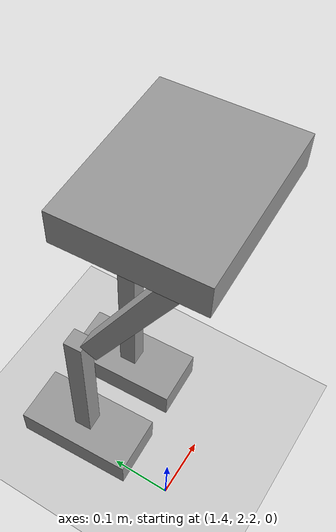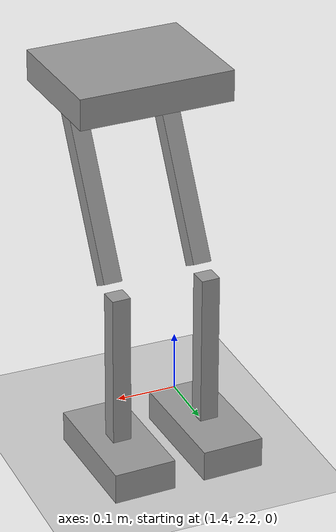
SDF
<sdf version="1.6">
 <world name="default">
  <model name="ground_plane">
   <static>1</static>
   <link name="link">
    <collision name="collision">
     <geometry><plane><normal>0 0 1</normal><size>100 100</size></plane></geometry>
     <surface><friction><ode><mu>100</mu><mu2>50</mu2></ode></friction></surface>
    </collision>
    <visual name="visual">
     <cast_shadows>0</cast_shadows>
     <geometry><plane><normal>0 0 1</normal><size>100 100</size></plane></geometry>
     <material>
      <script><uri>file://media/materials/scripts/gazebo.material</uri><name>Gazebo/Grey</name></script>
     </material>
    </visual>
   </link>
  </model>
  <model name="HumonoidRobot_2">
   <link name="link_0">
    <pose>-0.075081 0.045022 -0.236474 0 -0 0</pose>
    <inertial>
     <mass>1</mass>
     <inertia>
      <ixx>0.166667</ixx>
      <ixy>0</ixy>
      <ixz>0</ixz>
      <iyy>0.166667</iyy>
      <iyz>0</iyz>
      <izz>0.166667</izz>
     </inertia>
    </inertial>
    <visual name="visual">
     <geometry><box><size>0.1 0.2 0.05</size></box></geometry>
     <material>
      <lighting>1</lighting>
      <script><uri>file://media/materials/scripts/gazebo.material</uri><name>Gazebo/Grey</name></script>
      <shader type="pixel"><normal_map>__default__</normal_map></shader>
      <ambient>0.3 0.3 0.3 1</ambient>
      <diffuse>0.7 0.7 0.7 1</diffuse>
      <specular>0.01 0.01 0.01 1</specular>
      <emissive>0 0 0 1</emissive>
     </material>
    </visual>
    <collision name="collision">
     <geometry><box><size>0.1 0.2 0.05</size></box></geometry>
     <surface>
      <friction>
       <ode><mu>1</mu><mu2>1</mu2><fdir1>0 0 0</fdir1><slip1>0</slip1><slip2>0</slip2></ode>
       <torsional>
        <coefficient>1</coefficient>
        <patch_radius>0</patch_radius>
        <surface_radius>0</surface_radius>
        <use_patch_radius>1</use_patch_radius>
        <ode><slip>0</slip></ode>
       </torsional>
      </friction>
      <bounce><restitution_coefficient>0</restitution_coefficient><threshold>1e+06</threshold></bounce>
      <contact>
       <collide_without_contact>0</collide_without_contact>
       <collide_without_contact_bitmask>1</collide_without_contact_bitmask>
       <collide_bitmask>1</collide_bitmask>
       <ode>
        <soft_cfm>0</soft_cfm>
        <soft_erp>0.2</soft_erp>
        <kp>1e+13</kp>
        <kd>1</kd>
        <max_vel>0.01</max_vel>
        <min_depth>0</min_depth>
       </ode>
       <bullet>
        <split_impulse>1</split_impulse>
        <split_impulse_penetration_threshold>-0.01</split_impulse_penetration_threshold>
        <soft_cfm>0</soft_cfm>
        <soft_erp>0.2</soft_erp>
        <kp>1e+13</kp>
        <kd>1</kd>
       </bullet>
      </contact>
     </surface>
    </collision>
   </link>
   <link name="link_0_clone">
    <pose>0.074919 0.045022 -0.236474 0 -0 0</pose>
    <inertial>
     <mass>1</mass>
     <inertia>
      <ixx>0.166667</ixx>
      <ixy>0</ixy>
      <ixz>0</ixz>
      <iyy>0.166667</iyy>
      <iyz>0</iyz>
      <izz>0.166667</izz>
     </inertia>
    </inertial>
    <visual name="visual">
     <geometry><box><size>0.1 0.2 0.05</size></box></geometry>
     <material>
      <lighting>1</lighting>
      <script><uri>file://media/materials/scripts/gazebo.material</uri><name>Gazebo/Grey</name></script>
      <shader type="pixel"><normal_map>__default__</normal_map></shader>
      <ambient>0.3 0.3 0.3 1</ambient>
      <diffuse>0.7 0.7 0.7 1</diffuse>
      <specular>0.01 0.01 0.01 1</specular>
      <emissive>0 0 0 1</emissive>
     </material>
    </visual>
    <collision name="collision">
     <geometry><box><size>0.1 0.2 0.05</size></box></geometry>
     <surface>
      <friction>
       <ode><mu>1</mu><mu2>1</mu2><fdir1>0 0 0</fdir1><slip1>0</slip1><slip2>0</slip2></ode>
       <torsional>
        <coefficient>1</coefficient>
        <patch_radius>0</patch_radius>
        <surface_radius>0</surface_radius>
        <use_patch_radius>1</use_patch_radius>
        <ode><slip>0</slip></ode>
       </torsional>
      </friction>
      <bounce><restitution_coefficient>0</restitution_coefficient><threshold>1e+06</threshold></bounce>
      <contact>
       <collide_without_contact>0</collide_without_contact>
       <collide_without_contact_bitmask>1</collide_without_contact_bitmask>
       <collide_bitmask>1</collide_bitmask>
       <ode>
        <soft_cfm>0</soft_cfm>
        <soft_erp>0.2</soft_erp>
        <kp>1e+13</kp>
        <kd>1</kd>
        <max_vel>0.01</max_vel>
        <min_depth>0</min_depth>
       </ode>
       <bullet>
        <split_impulse>1</split_impulse>
        <split_impulse_penetration_threshold>-0.01</split_impulse_penetration_threshold>
        <soft_cfm>0</soft_cfm>
        <soft_erp>0.2</soft_erp>
        <kp>1e+13</kp>
        <kd>1</kd>
       </bullet>
      </contact>
     </surface>
    </collision>
   </link>
   <link name="link_0_clone_0">
    <pose>0.000486 -0.069978 0.341184 0 -0 0</pose>
    <inertial>
     <mass>1</mass>
     <inertia>
      <ixx>0.166667</ixx>
      <ixy>0</ixy>
      <ixz>0</ixz>
      <iyy>0.166667</iyy>
      <iyz>0</iyz>
      <izz>0.166667</izz>
     </inertia>
    </inertial>
    <visual name="visual">
     <geometry><box><size>0.25 0.2 0.05</size></box></geometry>
     <material>
      <lighting>1</lighting>
      <script><uri>file://media/materials/scripts/gazebo.material</uri><name>Gazebo/Grey</name></script>
      <shader type="pixel"><normal_map>__default__</normal_map></shader>
      <ambient>0.3 0.3 0.3 1</ambient>
      <diffuse>0.7 0.7 0.7 1</diffuse>
      <specular>0.01 0.01 0.01 1</specular>
      <emissive>0 0 0 1</emissive>
     </material>
    </visual>
    <collision name="collision">
     <geometry><box><size>0.25 0.2 0.05</size></box></geometry>
     <surface>
      <friction>
       <ode><mu>1</mu><mu2>1</mu2><fdir1>0 0 0</fdir1><slip1>0</slip1><slip2>0</slip2></ode>
       <torsional>
        <coefficient>1</coefficient>
        <patch_radius>0</patch_radius>
        <surface_radius>0</surface_radius>
        <use_patch_radius>1</use_patch_radius>
        <ode><slip>0</slip></ode>
       </torsional>
      </friction>
      <bounce><restitution_coefficient>0</restitution_coefficient><threshold>1e+06</threshold></bounce>
      <contact>
       <collide_without_contact>0</collide_without_contact>
       <collide_without_contact_bitmask>1</collide_without_contact_bitmask>
       <collide_bitmask>1</collide_bitmask>
       <ode>
        <soft_cfm>0</soft_cfm>
        <soft_erp>0.2</soft_erp>
        <kp>1e+13</kp>
        <kd>1</kd>
        <max_vel>0.01</max_vel>
        <min_depth>0</min_depth>
       </ode>
       <bullet>
        <split_impulse>1</split_impulse>
        <split_impulse_penetration_threshold>-0.01</split_impulse_penetration_threshold>
        <soft_cfm>0</soft_cfm>
        <soft_erp>0.2</soft_erp>
        <kp>1e+13</kp>
        <kd>1</kd>
       </bullet>
      </contact>
     </surface>
    </collision>
   </link>
   <link name="link_1">
    <pose>-0.075081 0.045022 -0.111474 0 -0 0</pose>
    <inertial>
     <mass>1</mass>
     <inertia>
      <ixx>0.166667</ixx>
      <ixy>0</ixy>
      <ixz>0</ixz>
      <iyy>0.166667</iyy>
      <iyz>0</iyz>
      <izz>0.166667</izz>
     </inertia>
    </inertial>
    <visual name="visual">
     <geometry><box><size>0.03 0.03 0.3</size></box></geometry>
     <material>
      <lighting>1</lighting>
      <script><uri>file://media/materials/scripts/gazebo.material</uri><name>Gazebo/Grey</name></script>
      <shader type="pixel"><normal_map>__default__</normal_map></shader>
      <ambient>0.3 0.3 0.3 1</ambient>
      <diffuse>0.7 0.7 0.7 1</diffuse>
      <specular>0.01 0.01 0.01 1</specular>
      <emissive>0 0 0 1</emissive>
     </material>
    </visual>
    <collision name="collision">
     <geometry><box><size>0.03 0.03 0.3</size></box></geometry>
     <surface>
      <friction>
       <ode><mu>1</mu><mu2>1</mu2><fdir1>0 0 0</fdir1><slip1>0</slip1><slip2>0</slip2></ode>
       <torsional>
        <coefficient>1</coefficient>
        <patch_radius>0</patch_radius>
        <surface_radius>0</surface_radius>
        <use_patch_radius>1</use_patch_radius>
        <ode><slip>0</slip></ode>
       </torsional>
      </friction>
      <bounce><restitution_coefficient>0</restitution_coefficient><threshold>1e+06</threshold></bounce>
      <contact>
       <collide_without_contact>0</collide_without_contact>
       <collide_without_contact_bitmask>1</collide_without_contact_bitmask>
       <collide_bitmask>1</collide_bitmask>
       <ode>
        <soft_cfm>0</soft_cfm>
        <soft_erp>0.2</soft_erp>
        <kp>1e+13</kp>
        <kd>1</kd>
        <max_vel>0.01</max_vel>
        <min_depth>0</min_depth>
       </ode>
       <bullet>
        <split_impulse>1</split_impulse>
        <split_impulse_penetration_threshold>-0.01</split_impulse_penetration_threshold>
        <soft_cfm>0</soft_cfm>
        <soft_erp>0.2</soft_erp>
        <kp>1e+13</kp>
        <kd>1</kd>
       </bullet>
      </contact>
     </surface>
    </collision>
   </link>
   <link name="link_1_clone">
    <pose>0.074919 0.045022 -0.111474 0 -0 0</pose>
    <inertial>
     <mass>1</mass>
     <inertia>
      <ixx>0.166667</ixx>
      <ixy>0</ixy>
      <ixz>0</ixz>
      <iyy>0.166667</iyy>
      <iyz>0</iyz>
      <izz>0.166667</izz>
     </inertia>
    </inertial>
    <visual name="visual">
     <geometry><box><size>0.03 0.03 0.3</size></box></geometry>
     <material>
      <lighting>1</lighting>
      <script><uri>file://media/materials/scripts/gazebo.material</uri><name>Gazebo/Grey</name></script>
      <shader type="pixel"><normal_map>__default__</normal_map></shader>
      <ambient>0.3 0.3 0.3 1</ambient>
      <diffuse>0.7 0.7 0.7 1</diffuse>
      <specular>0.01 0.01 0.01 1</specular>
      <emissive>0 0 0 1</emissive>
     </material>
    </visual>
    <collision name="collision">
     <geometry><box><size>0.03 0.03 0.3</size></box></geometry>
     <surface>
      <friction>
       <ode><mu>1</mu><mu2>1</mu2><fdir1>0 0 0</fdir1><slip1>0</slip1><slip2>0</slip2></ode>
       <torsional>
        <coefficient>1</coefficient>
        <patch_radius>0</patch_radius>
        <surface_radius>0</surface_radius>
        <use_patch_radius>1</use_patch_radius>
        <ode><slip>0</slip></ode>
       </torsional>
      </friction>
      <bounce><restitution_coefficient>0</restitution_coefficient><threshold>1e+06</threshold></bounce>
      <contact>
       <collide_without_contact>0</collide_without_contact>
       <collide_without_contact_bitmask>1</collide_without_contact_bitmask>
       <collide_bitmask>1</collide_bitmask>
       <ode>
        <soft_cfm>0</soft_cfm>
        <soft_erp>0.2</soft_erp>
        <kp>1e+13</kp>
        <kd>1</kd>
        <max_vel>0.01</max_vel>
        <min_depth>0</min_depth>
       </ode>
       <bullet>
        <split_impulse>1</split_impulse>
        <split_impulse_penetration_threshold>-0.01</split_impulse_penetration_threshold>
        <soft_cfm>0</soft_cfm>
        <soft_erp>0.2</soft_erp>
        <kp>1e+13</kp>
        <kd>1</kd>
       </bullet>
      </contact>
     </surface>
    </collision>
   </link>
   <link name="link_1_clone_0">
    <pose>-0.075081 -0.055055 0.177355 0.5 -0 0</pose>
    <inertial>
     <mass>1</mass>
     <inertia>
      <ixx>0.166667</ixx>
      <ixy>0</ixy>
      <ixz>0</ixz>
      <iyy>0.166667</iyy>
      <iyz>0</iyz>
      <izz>0.166667</izz>
     </inertia>
    </inertial>
    <visual name="visual">
     <geometry><box><size>0.03 0.03 0.3</size></box></geometry>
     <material>
      <lighting>1</lighting>
      <script><uri>file://media/materials/scripts/gazebo.material</uri><name>Gazebo/Grey</name></script>
      <shader type="pixel"><normal_map>__default__</normal_map></shader>
      <ambient>0.3 0.3 0.3 1</ambient>
      <diffuse>0.7 0.7 0.7 1</diffuse>
      <specular>0.01 0.01 0.01 1</specular>
      <emissive>0 0 0 1</emissive>
     </material>
    </visual>
    <collision name="collision">
     <geometry><box><size>0.03 0.03 0.3</size></box></geometry>
     <surface>
      <friction>
       <ode><mu>1</mu><mu2>1</mu2><fdir1>0 0 0</fdir1><slip1>0</slip1><slip2>0</slip2></ode>
       <torsional>
        <coefficient>1</coefficient>
        <patch_radius>0</patch_radius>
        <surface_radius>0</surface_radius>
        <use_patch_radius>1</use_patch_radius>
        <ode><slip>0</slip></ode>
       </torsional>
      </friction>
      <bounce><restitution_coefficient>0</restitution_coefficient><threshold>1e+06</threshold></bounce>
      <contact>
       <collide_without_contact>0</collide_without_contact>
       <collide_without_contact_bitmask>1</collide_without_contact_bitmask>
       <collide_bitmask>1</collide_bitmask>
       <ode>
        <soft_cfm>0</soft_cfm>
        <soft_erp>0.2</soft_erp>
        <kp>1e+13</kp>
        <kd>1</kd>
        <max_vel>0.01</max_vel>
        <min_depth>0</min_depth>
       </ode>
       <bullet>
        <split_impulse>1</split_impulse>
        <split_impulse_penetration_threshold>-0.01</split_impulse_penetration_threshold>
        <soft_cfm>0</soft_cfm>
        <soft_erp>0.2</soft_erp>
        <kp>1e+13</kp>
        <kd>1</kd>
       </bullet>
      </contact>
     </surface>
    </collision>
   </link>
   <link name="link_1_clone_1">
    <pose>0.074919 -0.055055 0.177355 0.5 -0 0</pose>
    <inertial>
     <mass>1</mass>
     <inertia>
      <ixx>0.166667</ixx>
      <ixy>0</ixy>
      <ixz>0</ixz>
      <iyy>0.166667</iyy>
      <iyz>0</iyz>
      <izz>0.166667</izz>
     </inertia>
    </inertial>
    <visual name="visual">
     <geometry><box><size>0.03 0.03 0.3</size></box></geometry>
     <material>
      <lighting>1</lighting>
      <script><uri>file://media/materials/scripts/gazebo.material</uri><name>Gazebo/Grey</name></script>
      <shader type="pixel"><normal_map>__default__</normal_map></shader>
      <ambient>0.3 0.3 0.3 1</ambient>
      <diffuse>0.7 0.7 0.7 1</diffuse>
      <specular>0.01 0.01 0.01 1</specular>
      <emissive>0 0 0 1</emissive>
     </material>
    </visual>
    <collision name="collision">
     <geometry><box><size>0.03 0.03 0.3</size></box></geometry>
     <surface>
      <friction>
       <ode><mu>1</mu><mu2>1</mu2><fdir1>0 0 0</fdir1><slip1>0</slip1><slip2>0</slip2></ode>
       <torsional>
        <coefficient>1</coefficient>
        <patch_radius>0</patch_radius>
        <surface_radius>0</surface_radius>
        <use_patch_radius>1</use_patch_radius>
        <ode><slip>0</slip></ode>
       </torsional>
      </friction>
      <bounce><restitution_coefficient>0</restitution_coefficient><threshold>1e+06</threshold></bounce>
      <contact>
       <collide_without_contact>0</collide_without_contact>
       <collide_without_contact_bitmask>1</collide_without_contact_bitmask>
       <collide_bitmask>1</collide_bitmask>
       <ode>
        <soft_cfm>0</soft_cfm>
        <soft_erp>0.2</soft_erp>
        <kp>1e+13</kp>
        <kd>1</kd>
        <max_vel>0.01</max_vel>
        <min_depth>0</min_depth>
       </ode>
       <bullet>
        <split_impulse>1</split_impulse>
        <split_impulse_penetration_threshold>-0.01</split_impulse_penetration_threshold>
        <soft_cfm>0</soft_cfm>
        <soft_erp>0.2</soft_erp>
        <kp>1e+13</kp>
        <kd>1</kd>
       </bullet>
      </contact>
     </surface>
    </collision>
   </link>
   <joint name="link_0_JOINT_0" type="fixed">
    <parent>link_0</parent>
    <child>link_1</child>
    <physics>
     <ode><limit><cfm>0</cfm><erp>0.2</erp></limit><suspension><cfm>0</cfm><erp>0.2</erp></suspension></ode>
    </physics>
   </joint>
   <joint name="link_0_clone_JOINT_1" type="fixed">
    <parent>link_0_clone</parent>
    <child>link_1_clone</child>
    <physics>
     <ode><limit><cfm>0</cfm><erp>0.2</erp></limit><suspension><cfm>0</cfm><erp>0.2</erp></suspension></ode>
    </physics>
   </joint>
   <joint name="link_1_JOINT_2" type="fixed">
    <parent>link_1</parent>
    <child>link_1_clone_0</child>
    <physics>
     <ode><limit><cfm>0</cfm><erp>0.2</erp></limit><suspension><cfm>0</cfm><erp>0.2</erp></suspension></ode>
    </physics>
   </joint>
   <joint name="link_1_clone_0_JOINT_4" type="fixed">
    <parent>link_1_clone_0</parent>
    <child>link_0_clone_0</child>
    <physics>
     <ode><limit><cfm>0</cfm><erp>0.2</erp></limit><suspension><cfm>0</cfm><erp>0.2</erp></suspension></ode>
    </physics>
   </joint>
   <joint name="link_1_clone_1_JOINT_5" type="fixed">
    <parent>link_1_clone_1</parent>
    <child>link_0_clone_0</child>
    <physics>
     <ode><limit><cfm>0</cfm><erp>0.2</erp></limit><suspension><cfm>0</cfm><erp>0.2</erp></suspension></ode>
    </physics>
   </joint>
   <joint name="link_1_clone_JOINT_3" type="revolute">
    <parent>link_1_clone</parent>
    <child>link_1_clone_1</child>
    <axis>
     <xyz>1 0 0</xyz>
     <use_parent_model_frame>0</use_parent_model_frame>
     <limit>
      <lower>-1.79769e+308</lower>
      <upper>1.79769e+308</upper>
      <effort>-1</effort>
      <velocity>-1</velocity>
     </limit>
     <dynamics>
      <spring_reference>0</spring_reference>
      <spring_stiffness>0</spring_stiffness>
      <damping>0</damping>
     </dynamics>
    </axis>
    <physics>
     <ode><limit><cfm>0</cfm><erp>0.2</erp></limit><suspension><cfm>0</cfm><erp>0.2</erp></suspension></ode>
    </physics>
   </joint>
   <static>0</static>
   <pose>1.49863 2.32941 0.261465 5e-06 1e-06 0.039268</pose>
  </model>
 </world>
</sdf>
